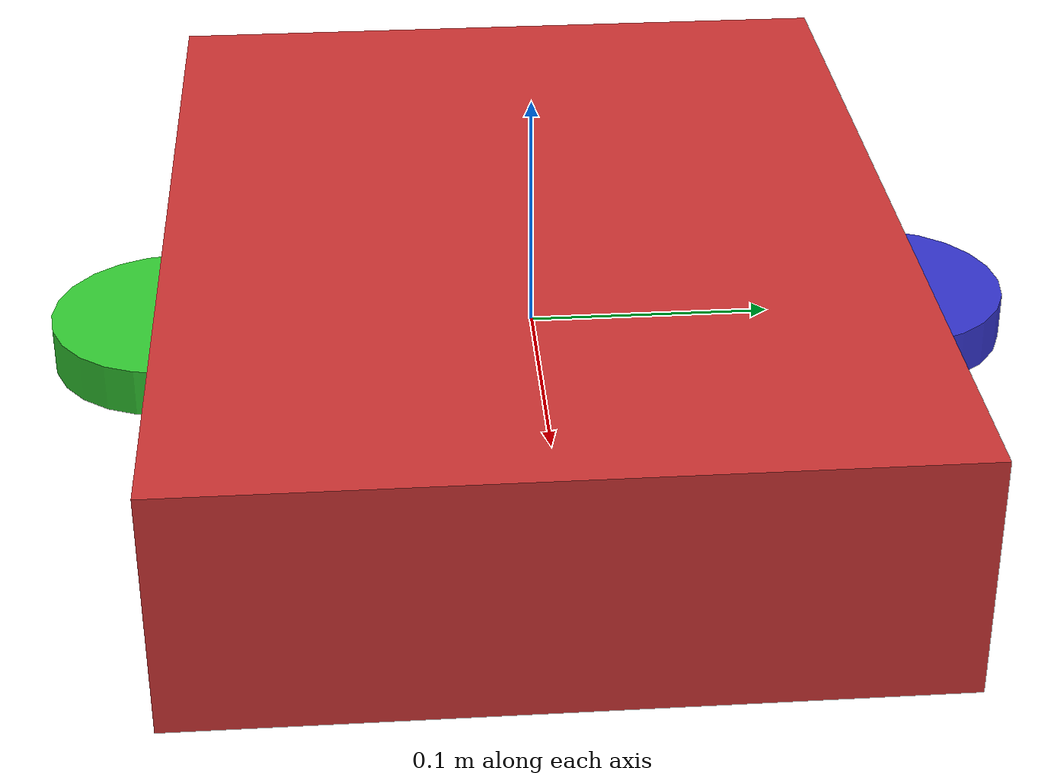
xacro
<?xml version="1.0"?>
<robot xmlns:xacro="http://www.ros.org/wiki/xacro" name="dif_bot">

  <!-- Propiedades -->
  <xacro:property name="base_length" value="0.4"/>
  <xacro:property name="base_width" value="0.3"/>
  <xacro:property name="base_height" value="0.1"/>
  <xacro:property name="wheel_radius" value="0.05"/>
  <xacro:property name="wheel_width" value="0.02"/>
  <xacro:property name="caster_radius" value="0.03"/>

  <!-- Macros de inercia -->
  <xacro:macro name="inertia_box" params="m lx ly lz">
    <inertial>
      <mass value="${m}"/>
      <inertia ixx="${m/12*(ly*ly+lz*lz)}"
               iyy="${m/12*(lx*lx+lz*lz)}"
               izz="${m/12*(lx*lx+ly*ly)}"
               ixy="0" ixz="0" iyz="0"/>
    </inertial>
  </xacro:macro>

  <xacro:macro name="inertia_cylinder" params="m r l">
    <inertial>
      <mass value="${m}"/>
      <inertia ixx="${m/12*(3*r*r+l*l)}"
               iyy="${m/12*(3*r*r+l*l)}"
               izz="${m/2*r*r}"
               ixy="0" ixz="0" iyz="0"/>
    </inertial>
  </xacro:macro>

  <xacro:macro name="inertia_sphere" params="m r">
    <inertial>
      <mass value="${m}"/>
      <inertia ixx="${2/5*m*r*r}"
               iyy="${2/5*m*r*r}"
               izz="${2/5*m*r*r}"
               ixy="0" ixz="0" iyz="0"/>
    </inertial>
  </xacro:macro>

  <!-- Base -->
  <link name="base_link">
    <visual>
      <geometry><box size="${base_length} ${base_width} ${base_height}"/></geometry>
      <material><color rgba="0.8 0.2 0.2 1"/></material>
    </visual>
    <collision>
      <geometry><box size="${base_length} ${base_width} ${base_height}"/></geometry>
    </collision>
    <xacro:inertia_box m="5.0" lx="${base_length}" ly="${base_width}" lz="${base_height}"/>
  </link>

  <!-- Rueda izquierda -->
  <link name="left_wheel">
    <visual>
      <geometry><cylinder radius="${wheel_radius}" length="${wheel_width}"/></geometry>
      <material><color rgba="0.2 0.2 0.8 1"/></material>
    </visual>
    <collision>
      <geometry><cylinder radius="${wheel_radius}" length="${wheel_width}"/></geometry>
    </collision>
    <xacro:inertia_cylinder m="1.0" r="${wheel_radius}" l="${wheel_width}"/>
  </link>
  <joint name="left_wheel_joint" type="continuous">
    <parent link="base_link"/>
    <child link="left_wheel"/>
    <origin xyz="0 ${base_width/2} 0" rpy="0 0 0"/>
    <axis xyz="0 1 0"/>
  </joint>

  <!-- Rueda derecha -->
  <link name="right_wheel">
    <visual>
      <geometry><cylinder radius="${wheel_radius}" length="${wheel_width}"/></geometry>
      <material><color rgba="0.2 0.8 0.2 1"/></material>
    </visual>
    <collision>
      <geometry><cylinder radius="${wheel_radius}" length="${wheel_width}"/></geometry>
    </collision>
    <xacro:inertia_cylinder m="1.0" r="${wheel_radius}" l="${wheel_width}"/>
  </link>
  <joint name="right_wheel_joint" type="continuous">
    <parent link="base_link"/>
    <child link="right_wheel"/>
    <origin xyz="0 -${base_width/2} 0" rpy="0 0 0"/>
    <axis xyz="0 1 0"/>
  </joint>

  <!-- Caster -->
  <link name="caster">
    <visual>
      <geometry><sphere radius="${caster_radius}"/></geometry>
      <material><color rgba="0.8 0.8 0.2 1"/></material>
    </visual>
    <collision>
      <geometry><sphere radius="${caster_radius}"/></geometry>
    </collision>
    <xacro:inertia_sphere m="0.5" r="${caster_radius}"/>
  </link>
  <joint name="caster_joint" type="fixed">
    <parent link="base_link"/>
    <child link="caster"/>
    <origin xyz="-${base_length/2} 0 -${caster_radius}" rpy="0 0 0"/>
  </joint>

</robot>
